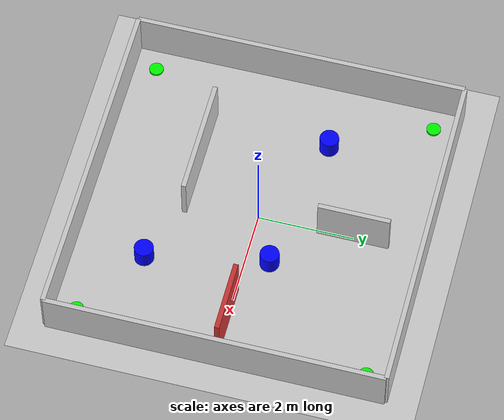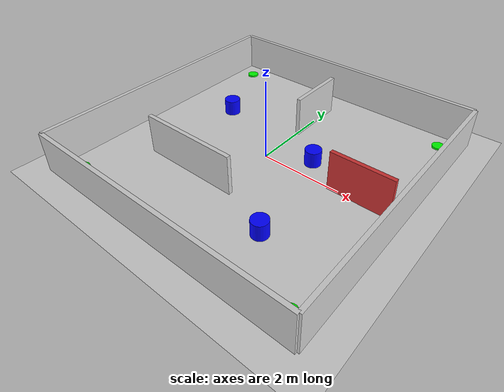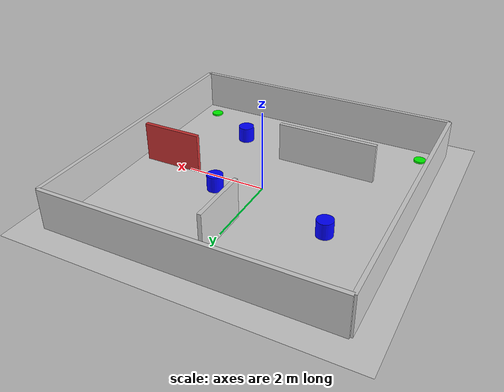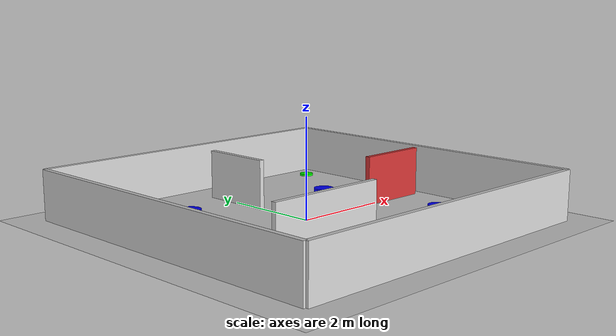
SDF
<?xml version="1.0" ?>
<sdf version="1.6">
  <world name="stage3_modded">

    <!-- Optional: Additional physics configuration -->
    <physics type="ode">
      <maxStepSize>0.001</maxStepSize>
      <realTimeUpdateRate>1000</realTimeUpdateRate>
      <realTimeFactor>1</realTimeFactor>
    </physics>

    <!-- Basic Elements -->
    <include>
      <uri>model://ground_plane</uri>
    </include>
    <include>
      <uri>model://sun</uri>
    </include>

    <!-- Outer Walls (±3.5 in x,y) -->
    <model name="outer_wall1">
      <static>true</static>
      <pose>0 3.5 0.5 0 0 0</pose>
      <link name="link">
        <collision name="collision">
          <geometry>
            <box><size>7 0.1 1</size></box>
          </geometry>
        </collision>
        <visual name="visual">
          <geometry>
            <box><size>7 0.1 1</size></box>
          </geometry>
          <material>
            <ambient>0.8 0.8 0.8 1</ambient>
          </material>
        </visual>
      </link>
    </model>

    <model name="outer_wall2">
      <static>true</static>
      <pose>0 -3.5 0.5 0 0 0</pose>
      <link name="link">
        <collision name="collision">
          <geometry>
            <box><size>7 0.1 1</size></box>
          </geometry>
        </collision>
        <visual name="visual">
          <geometry>
            <box><size>7 0.1 1</size></box>
          </geometry>
          <material>
            <ambient>0.8 0.8 0.8 1</ambient>
          </material>
        </visual>
      </link>
    </model>

    <model name="outer_wall3">
      <static>true</static>
      <pose>3.5 0 0.5 0 0 1.5708</pose>
      <link name="link">
        <collision name="collision">
          <geometry>
            <box><size>7 0.1 1</size></box>
          </geometry>
        </collision>
        <visual name="visual">
          <geometry>
            <box><size>7 0.1 1</size></box>
          </geometry>
          <material>
            <ambient>0.8 0.8 0.8 1</ambient>
          </material>
        </visual>
      </link>
    </model>

    <model name="outer_wall4">
      <static>true</static>
      <pose>-3.5 0 0.5 0 0 1.5708</pose>
      <link name="link">
        <collision name="collision">
          <geometry>
            <box><size>7 0.1 1</size></box>
          </geometry>
        </collision>
        <visual name="visual">
          <geometry>
            <box><size>7 0.1 1</size></box>
          </geometry>
          <material>
            <ambient>0.8 0.8 0.8 1</ambient>
          </material>
        </visual>
      </link>
    </model>

    <!-- Inner Walls -->
    <model name="inner_wall1">
      <static>true</static>
      <pose>0 2.0 0.5 0 0 1.5708</pose> <!-- Short vertical near top -->
      <link name="link">
        <collision name="collision">
          <geometry>
            <box><size>1.5 0.1 1</size></box>
          </geometry>
        </collision>
        <visual name="visual">
          <geometry>
            <box><size>1.5 0.1 1</size></box>
          </geometry>
          <material>
            <ambient>0.8 0.8 0.8 1</ambient>
          </material>
        </visual>
      </link>
    </model>

    <model name="inner_wall2">
      <static>true</static>
      <pose>-1 -1.5 0.5 0 0 0</pose>
      <link name="link">
        <collision name="collision">
          <geometry>
            <box><size>2.5 0.1 1</size></box>
          </geometry>
        </collision>
        <visual name="visual">
          <geometry>
            <box><size>2.5 0.1 1</size></box>
          </geometry>
          <material>
            <ambient>0.8 0.8 0.8 1</ambient>
          </material>
        </visual>
      </link>
    </model>

    <!-- Adjusted Inner Wall 3 -->
    <model name="inner_wall3">
      <static>true</static>
      <pose>2.5 0 0.5 0 0 0</pose>  <!-- Moved closer to outer wall -->
      <link name="link">
        <collision name="collision">
          <geometry>
            <box><size>1.5 0.1 1</size></box>
          </geometry>
        </collision>
        <visual name="visual">
          <geometry>
            <box><size>1.5 0.1 1</size></box>
          </geometry>
          <material>
            <ambient>0.8 0.2 0.2 1</ambient> <!-- Red color -->
          </material>
        </visual>
      </link>
    </model>

    <!-- Dynamic Obstacles -->
    <model name="dynamic_obstacle1">
      <pose>-2 1.0 0.2 0 0 0</pose> <!-- Adjusted z value -->
      <link name="link">
        <collision name="collision">
          <geometry>
            <cylinder><radius>0.2</radius><length>0.4</length></cylinder>
          </geometry>
        </collision>
        <visual name="visual">
          <geometry>
            <cylinder><radius>0.2</radius><length>0.4</length></cylinder>
          </geometry>
          <material>
            <ambient>0 0 1 1</ambient>
          </material>
        </visual>
      </link>
      <plugin name="dynamic_motion1" filename="libgazebo_ros_planar_move.so">
        <robotNamespace>/dynamic_obstacle1</robotNamespace>
        <commandTopic>cmd_vel</commandTopic>
        <odometryTopic>odom</odometryTopic>
        <pathType>circle</pathType>
        <pathRadius>0.9</pathRadius>
        <pathCenterX>-2</pathCenterX>
        <pathCenterY>1.0</pathCenterY>
        <cmdTimeout>2.0</cmdTimeout>
        <odometryRate>20</odometryRate>
      </plugin>
    </model>

    <model name="dynamic_obstacle2">
      <pose>1.5 -2.0 0.2 0 0 0</pose>
      <link name="link">
        <collision name="collision">
          <geometry>
            <cylinder><radius>0.2</radius><length>0.4</length></cylinder>
          </geometry>
        </collision>
        <visual name="visual">
          <geometry>
            <cylinder><radius>0.2</radius><length>0.4</length></cylinder>
          </geometry>
          <material>
            <ambient>0 0 1 1</ambient>
          </material>
        </visual>
      </link>
    <plugin name="dynamic_motion2" filename="libgazebo_ros_planar_move.so">
      <robotNamespace>/dynamic_obstacle2</robotNamespace>
      <commandTopic>cmd_vel</commandTopic>
      <odometryTopic>odom</odometryTopic>
      <pathType>circle</pathType>
      <pathRadius>0.8</pathRadius>
      <pathCenterX>1.5</pathCenterX>
      <pathCenterY>-2.0</pathCenterY>
      <cmdTimeout>2.0</cmdTimeout>
      <odometryRate>20</odometryRate>
    </plugin>
  </model>

    <model name="dynamic_obstacle3">
      <pose>1.0 0.5 0.2 0 0 0</pose>
      <link name="link">
        <collision name="collision">
          <geometry>
            <cylinder><radius>0.2</radius><length>0.4</length></cylinder>
          </geometry>
        </collision>
        <visual name="visual">
          <geometry>
            <cylinder><radius>0.2</radius><length>0.4</length></cylinder>
          </geometry>
          <material>
            <ambient>0 0 1 1</ambient>
          </material>
        </visual>
      </link>
    <plugin name="dynamic_motion3" filename="libgazebo_ros_planar_move.so">
      <robotNamespace>/dynamic_obstacle3</robotNamespace>
      <commandTopic>cmd_vel</commandTopic>
      <odometryTopic>odom</odometryTopic>
      <pathType>circle</pathType>
      <pathRadius>0.6</pathRadius>
      <pathCenterX>1.0</pathCenterX>
      <pathCenterY>0.5</pathCenterY>
      <cmdTimeout>2.0</cmdTimeout>
      <odometryRate>20</odometryRate>
    </plugin>
  </model>

 <model name="goal1_marker">
      <static>true</static>
      <pose>-3 3 0.01 0 0 0</pose>
      <link name="link">
        <!-- Main goal marker -->
        <visual name="visual">
          <geometry>
            <cylinder>
              <radius>0.15</radius>
              <length>0.05</length>
            </cylinder>
          </geometry>
          <material>
            <ambient>0 1 0 0.9</ambient>
            <diffuse>0 1 0 0.9</diffuse>
            <emissive>0 0.3 0 1</emissive>
          </material>
        </visual>
      </link>
    </model>

    <model name="goal2_marker">
      <static>true</static>
      <pose>3 3 0.01 0 0 0</pose>
      <link name="link">
        <!-- Main goal marker -->
        <visual name="visual">
          <geometry>
            <cylinder>
              <radius>0.15</radius>
              <length>0.05</length>
            </cylinder>
          </geometry>
          <material>
            <ambient>0 1 0 0.9</ambient>
            <diffuse>0 1 0 0.9</diffuse>
            <emissive>0 0.3 0 1</emissive>
          </material>
        </visual>
      </link>
    </model>

    <model name="goal3_marker">
      <static>true</static>
      <pose>-3 -3 0.01 0 0 0</pose>
      <link name="link">
        <!-- Main goal marker -->
        <visual name="visual">
          <geometry>
            <cylinder>
              <radius>0.15</radius>
              <length>0.05</length>
            </cylinder>
          </geometry>
          <material>
            <ambient>0 1 0 0.9</ambient>
            <diffuse>0 1 0 0.9</diffuse>
            <emissive>0 0.3 0 1</emissive>
          </material>
        </visual>
      </link>
    </model>

    <model name="goal4_marker">
      <static>true</static>
      <pose>3 -3 0.01 0 0 0</pose>
      <link name="link">
        <!-- Main goal marker -->
        <visual name="visual">
          <geometry>
            <cylinder>
              <radius>0.15</radius>
              <length>0.05</length>
            </cylinder>
          </geometry>
          <material>
            <ambient>0 1 0 0.9</ambient>
            <diffuse>0 1 0 0.9</diffuse>
            <emissive>0 0.3 0 1</emissive>
          </material>
        </visual>
      </link>
    </model>

  </world>
</sdf>
